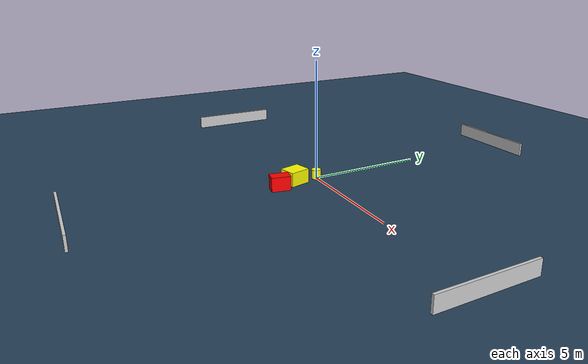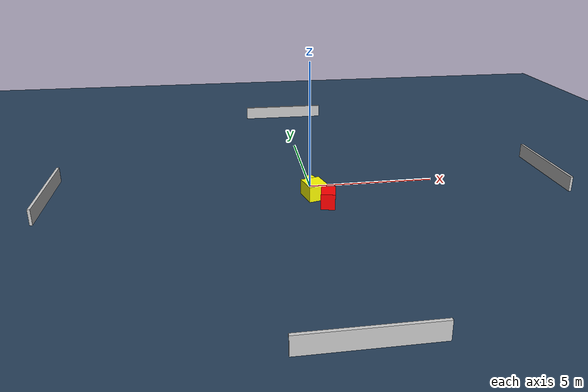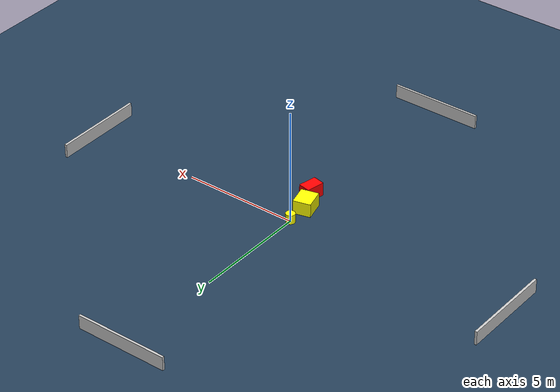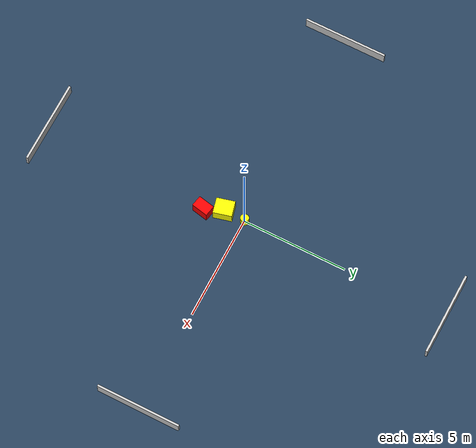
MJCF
<?xml version="1.0" ?>
<mujoco model="generated_environment">
  <option timestep="0.01" integrator="RK4" cone="elliptic"/>
  <default>
    <geom density="1"/>
  </default>
  <asset>
    <texture builtin="gradient" height="3072" name="skybox" rgb1="0.3 0.5 0.7" rgb2="0 0 0" type="skybox" width="512"/>
    <texture builtin="checker" height="300" name="groundplane" rgb1="0.2 0.3 0.4" rgb2="0.1 0.2 0.3" type="2d" width="300"/>
    <material name="groundplane" reflectance="0.2" texrepeat="5 5" texture="groundplane"/>
  </asset>
  <worldbody>
    <light dir="0 0 -1" directional="true" pos="0 0 1.5"/>
    <geom condim="3" friction="0.5 0.005 0.001" material="groundplane" name="floor" pos="0 0 0" size="0 0 0.05" type="plane"/>
    <body name="walls">
      <geom name="wall_1" condim="4" pos="-10.0 0.0 0.3" rgba="0.800000011920929 0.800000011920929 0.800000011920929 1.0" size="0.05 2.0 0.3" type="box"/>
      <geom name="wall_2" condim="4" pos="10.0 0.0 0.3" rgba="0.800000011920929 0.800000011920929 0.800000011920929 1.0" size="0.05 2.0 0.3" type="box"/>
      <geom name="wall_3" condim="4" pos="0.0 -10.0 0.3" rgba="0.800000011920929 0.800000011920929 0.800000011920929 1.0" size="2.0 0.05 0.3" type="box"/>
      <geom name="wall_4" condim="4" pos="0.0 10.0 0.3" rgba="0.800000011920929 0.800000011920929 0.800000011920929 1.0" size="2.0 0.05 0.3" type="box"/>
    </body>
    <body name="robot">
      <joint name="joint_x" type="slide" pos="0 0 0" axis="1 0 0"/>
      <joint name="joint_y" type="slide" pos="0 0 0" axis="0 1 0"/>
      <geom name="robot" type="cylinder" pos="0.0 0.0 0.2" size="0.2 0.2 0.0" mass="5.0" friction="1.0 0.005 0.0001" condim="4" rgba="1.0 1.0 0.0 1.0"/>
    </body>
    <body name="obstacle_1_movable">
      <geom name="obstacle_1_movable" condim="4" pos="0.021726952602386093 -1.0210462829058597 0.3" euler="0 0 284.65807331121727" friction="0.0 0.005 0.001" rgba="1.0 1.0 0.0 1.0" size="0.4404296844329903 0.3757904557241972 0.3" type="box" mass="0.1"/>
      <joint type="free"/>
    </body>
    <body name="obstacle_2_static">
      <geom name="obstacle_2_static" condim="4" pos="0.4070284235161799 -1.8817356848253044 0.3" euler="0 0 78.67142319625437" friction="0.0 0.005 0.001" rgba="1.0 0.0 0.0 1.0" size="0.39918114914819275 0.26324801428359307 0.3" type="box"/>
    </body>
  </worldbody>
  <actuator>
    <motor name="actuator_x" joint="joint_x" gear="1" ctrlrange="-1 1"/>
    <motor name="actuator_y" joint="joint_y" gear="1" ctrlrange="-1 1"/>
  </actuator>
</mujoco>
